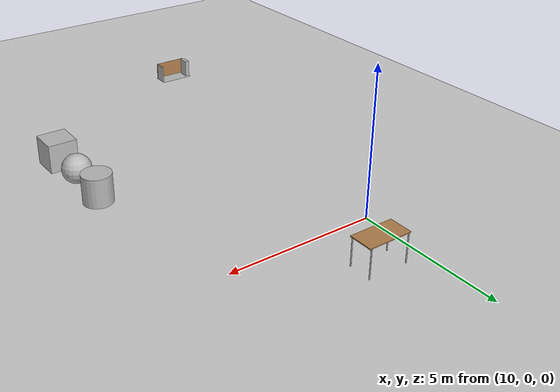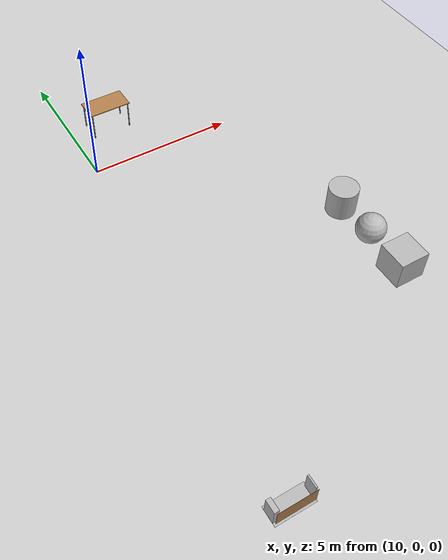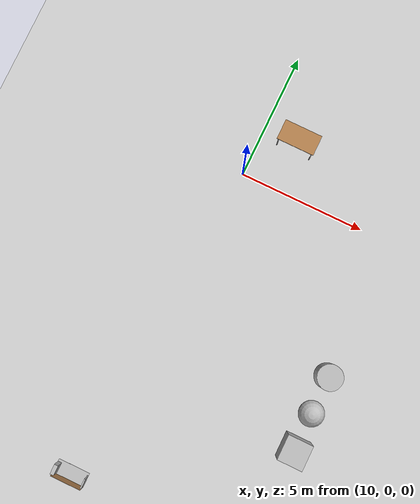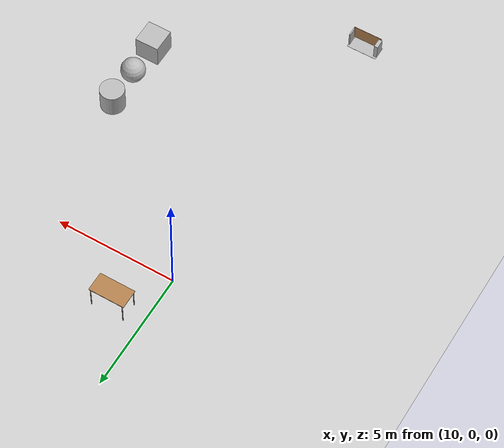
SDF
<sdf version="1.6">
 <world name="default">
  <model name="ground_plane">
   <static>1</static>
   <link name="link">
    <collision name="collision">
     <geometry><plane><normal>0 0 1</normal><size>100 100</size></plane></geometry>
     <surface>
      <contact><collide_bitmask>65535</collide_bitmask></contact>
      <friction><ode><mu>100</mu><mu2>50</mu2></ode></friction>
     </surface>
    </collision>
    <visual name="visual">
     <cast_shadows>0</cast_shadows>
     <geometry><plane><normal>0 0 1</normal><size>100 100</size></plane></geometry>
     <material>
      <script><uri>file://media/materials/scripts/gazebo.material</uri><name>Gazebo/Grey</name></script>
     </material>
    </visual>
   </link>
  </model>
  <model name="textured_shapes">
   <pose>16.1686 -7.08415 0.5 0 -0 0</pose>
   <link name="box">
    <pose>0 -1.5 0 0 -0 0</pose>
    <collision name="collision"><geometry><box><size>1 1 1</size></box></geometry></collision>
    <visual name="visual">
     <geometry><box><size>1 1 1</size></box></geometry>
     <material>
      <script>
       <uri>model://textured_shapes/materials/scripts</uri>
       <uri>model://textured_shapes/materials/textures</uri>
       <name>TexturedShape/Squares</name>
      </script>
     </material>
    </visual>
    <inertial>
     <inertia><ixx>1</ixx><ixy>0</ixy><ixz>0</ixz><iyy>1</iyy><iyz>0</iyz><izz>1</izz></inertia>
     <mass>1</mass>
    </inertial>
   </link>
   <link name="sphere">
    <collision name="collision"><geometry><sphere><radius>0.5</radius></sphere></geometry></collision>
    <visual name="visual">
     <geometry><sphere><radius>0.5</radius></sphere></geometry>
     <material>
      <script>
       <uri>model://textured_shapes/materials/scripts</uri>
       <uri>model://textured_shapes/materials/textures</uri>
       <name>TexturedShape/Squares</name>
      </script>
     </material>
    </visual>
    <inertial>
     <inertia><ixx>1</ixx><ixy>0</ixy><ixz>0</ixz><iyy>1</iyy><iyz>0</iyz><izz>1</izz></inertia>
     <mass>1</mass>
    </inertial>
   </link>
   <link name="cylinder">
    <pose>0 1.5 0 0 -0 0</pose>
    <collision name="collision">
     <geometry><cylinder><radius>0.5</radius><length>1</length></cylinder></geometry>
    </collision>
    <visual name="visual">
     <geometry><cylinder><radius>0.5</radius><length>1</length></cylinder></geometry>
     <material>
      <script>
       <uri>model://textured_shapes/materials/scripts</uri>
       <uri>model://textured_shapes/materials/textures</uri>
       <name>TexturedShape/Squares</name>
      </script>
     </material>
    </visual>
    <inertial>
     <inertia><ixx>1</ixx><ixy>0</ixy><ixz>0</ixz><iyy>1</iyy><iyz>0</iyz><izz>1</izz></inertia>
     <mass>1</mass>
    </inertial>
   </link>
  </model>
  <model name="table_1">
   <static>1</static>
   <link name="link">
    <collision name="surface">
     <pose>0 0 1 0 -0 0</pose>
     <geometry><box><size>1.5 0.8 0.03</size></box></geometry>
     <surface><friction><ode><mu>0.6</mu><mu2>0.6</mu2></ode></friction></surface>
    </collision>
    <visual name="visual1">
     <pose>0 0 1 0 -0 0</pose>
     <geometry><box><size>1.5 0.8 0.03</size></box></geometry>
     <material>
      <script><uri>file://media/materials/scripts/gazebo.material</uri><name>Gazebo/Wood</name></script>
     </material>
    </visual>
    <collision name="front_left_leg">
     <pose>0.68 0.38 0.5 0 -0 0</pose>
     <geometry><cylinder><radius>0.02</radius><length>1</length></cylinder></geometry>
    </collision>
    <visual name="front_left_leg">
     <pose>0.68 0.38 0.5 0 -0 0</pose>
     <geometry><cylinder><radius>0.02</radius><length>1</length></cylinder></geometry>
     <material>
      <script><uri>file://media/materials/scripts/gazebo.material</uri><name>Gazebo/Grey</name></script>
     </material>
    </visual>
    <collision name="front_right_leg">
     <pose>0.68 -0.38 0.5 0 -0 0</pose>
     <geometry><cylinder><radius>0.02</radius><length>1</length></cylinder></geometry>
    </collision>
    <visual name="front_right_leg">
     <pose>0.68 -0.38 0.5 0 -0 0</pose>
     <geometry><cylinder><radius>0.02</radius><length>1</length></cylinder></geometry>
     <material>
      <script><uri>file://media/materials/scripts/gazebo.material</uri><name>Gazebo/Grey</name></script>
     </material>
    </visual>
    <collision name="back_right_leg">
     <pose>-0.68 -0.38 0.5 0 -0 0</pose>
     <geometry><cylinder><radius>0.02</radius><length>1</length></cylinder></geometry>
    </collision>
    <visual name="back_right_leg">
     <pose>-0.68 -0.38 0.5 0 -0 0</pose>
     <geometry><cylinder><radius>0.02</radius><length>1</length></cylinder></geometry>
     <material>
      <script><uri>file://media/materials/scripts/gazebo.material</uri><name>Gazebo/Grey</name></script>
     </material>
    </visual>
    <collision name="back_left_leg">
     <pose>-0.68 0.38 0.5 0 -0 0</pose>
     <geometry><cylinder><radius>0.02</radius><length>1</length></cylinder></geometry>
    </collision>
    <visual name="back_left_leg">
     <pose>-0.68 0.38 0.5 0 -0 0</pose>
     <geometry><cylinder><radius>0.02</radius><length>1</length></cylinder></geometry>
     <material>
      <script><uri>file://media/materials/scripts/gazebo.material</uri><name>Gazebo/Grey</name></script>
     </material>
    </visual>
   </link>
   <pose>11.3619 1.9873 0 0 -0 0</pose>
  </model>
  <model name="frc2016_sallyport">
   <link name="base">
    <inertial>
     <mass>50</mass>
     <pose>0 0 0.35406 0 -0 0</pose>
     <inertia><ixx>0.727808</ixx><ixy>0</ixy><ixz>0</ixz><iyy>1.77488</iyy><iyz>0</iyz><izz>1.64109</izz></inertia>
    </inertial>
    <visual name="platform">
     <pose>0 0 0.06974 0 -0 0</pose>
     <geometry><box><size>1.27 0.5969 0.003175</size></box></geometry>
    </visual>
    <collision name="platform">
     <pose>0 0 0.06974 0 -0 0</pose>
     <geometry><box><size>1.27 0.5969 0.003175</size></box></geometry>
    </collision>
    <visual name="left_column">
     <pose>-0.5588 0.00318 0.38876 0 -0 0</pose>
     <geometry><box><size>0.1524 0.38735 0.635</size></box></geometry>
    </visual>
    <collision name="left_column">
     <pose>-0.5588 0.00318 0.38876 0 -0 0</pose>
     <geometry><box><size>0.1524 0.38735 0.635</size></box></geometry>
    </collision>
    <visual name="right_column">
     <pose>0.6096 0.00635 0.38876 0 -0 0</pose>
     <geometry><box><size>0.0508 0.381 0.635</size></box></geometry>
    </visual>
    <collision name="right_column">
     <pose>0.6096 0.00635 0.38876 0 -0 0</pose>
     <geometry><box><size>0.0508 0.381 0.635</size></box></geometry>
    </collision>
    <visual name="castor1">
     <pose>-0.45886 0.15389 0.03487 0 -0 0</pose>
     <geometry><sphere><radius>0.03487</radius></sphere></geometry>
    </visual>
    <collision name="castor1">
     <pose>-0.45886 0.15389 0.03487 0 -0 0</pose>
     <geometry><sphere><radius>0.03487</radius></sphere></geometry>
    </collision>
    <visual name="castor2">
     <pose>-0.28117 -0.22559 0.03487 0 -0 0</pose>
     <geometry><sphere><radius>0.03487</radius></sphere></geometry>
    </visual>
    <collision name="castor2">
     <pose>-0.28117 -0.22559 0.03487 0 -0 0</pose>
     <geometry><sphere><radius>0.03487</radius></sphere></geometry>
    </collision>
    <visual name="castor3">
     <pose>0.27933 -0.2272 0.03487 0 -0 0</pose>
     <geometry><sphere><radius>0.03487</radius></sphere></geometry>
    </visual>
    <collision name="castor3">
     <pose>0.27933 -0.2272 0.03487 0 -0 0</pose>
     <geometry><sphere><radius>0.03487</radius></sphere></geometry>
    </collision>
    <visual name="castor4">
     <pose>0.4571 0.15424 0.03487 0 -0 0</pose>
     <geometry><sphere><radius>0.03487</radius></sphere></geometry>
    </visual>
    <collision name="castor4">
     <pose>0.4571 0.15424 0.03487 0 -0 0</pose>
     <geometry><sphere><radius>0.03487</radius></sphere></geometry>
    </collision>
   </link>
   <link name="door">
    <pose>0.02255 -0.24321 0.40332 0 -0 0</pose>
    <inertial>
     <pose>0 0 0 -1.5707 0 0</pose>
     <mass>2</mass>
     <inertia>
      <ixx>0.0619421</ixx>
      <ixy>0</ixy>
      <ixz>0</ixz>
      <iyy>0.246462</iyy>
      <iyz>0</iyz>
      <izz>0.30839</izz>
     </inertia>
    </inertial>
    <visual name="visual">
     <geometry><box><size>1.21603 0.00635 0.6096</size></box></geometry>
     <material><script><name>Gazebo/WoodFloor</name><uri>__default__</uri></script></material>
    </visual>
    <collision name="collision"><geometry><box><size>1.21603 0.00635 0.6096</size></box></geometry></collision>
   </link>
   <joint name="door_joint" type="revolute">
    <pose>-0.608015 0 0 0 -0 0</pose>
    <parent>base</parent>
    <child>door</child>
    <axis>
     <xyz>0 0 1</xyz>
     <limit><lower>-3.1415</lower><upper>0</upper></limit>
     <use_parent_model_frame>0</use_parent_model_frame>
     <dynamics><spring_reference>0</spring_reference><spring_stiffness>0</spring_stiffness></dynamics>
    </axis>
   </joint>
   <pose>9.0841 -12.9811 0 0 -0 0.003665</pose>
  </model>
 </world>
</sdf>
